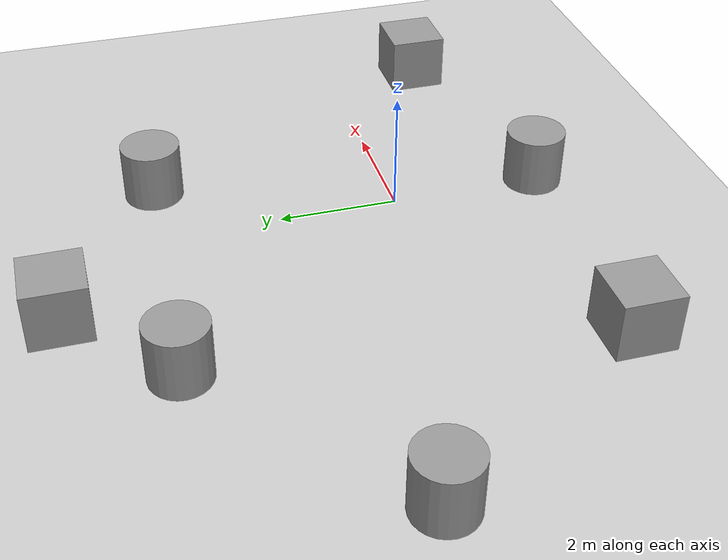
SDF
<sdf version="1.7">
 <world name="default">
  <light name="sun" type="directional">
   <pose>0 0 10 0 -0 0</pose>
   <diffuse>0.8 0.8 0.8 1</diffuse>
   <specular>0.2 0.2 0.2 1</specular>
   <attenuation>
    <range>1000</range>
    <constant>0.9</constant>
    <linear>0.01</linear>
    <quadratic>0.001</quadratic>
   </attenuation>
   <direction>-0.5 0.1 -0.9</direction>
   <spot><inner_angle>0</inner_angle><outer_angle>0</outer_angle><falloff>0</falloff></spot>
  </light>
  <model name="ground_plane">
   <static>1</static>
   <link name="link">
    <collision name="collision">
     <geometry><plane><normal>0 0 1</normal><size>100 100</size></plane></geometry>
     <surface>
      <contact><collide_bitmask>65535</collide_bitmask></contact>
      <friction><ode><mu>100</mu><mu2>50</mu2></ode></friction>
     </surface>
    </collision>
    <visual name="visual">
     <cast_shadows>0</cast_shadows>
     <geometry><plane><normal>0 0 1</normal><size>100 100</size></plane></geometry>
     <material>
      <script><uri>file://media/materials/scripts/gazebo.material</uri><name>Gazebo/Grey</name></script>
     </material>
    </visual>
   </link>
  </model>
  <gravity>0 0 -9.8</gravity>
  <magnetic_field>6e-06 2.3e-05 -4.2e-05</magnetic_field>
  <atmosphere type="adiabatic"/>
  <physics type="ode">
   <max_step_size>0.001</max_step_size>
   <real_time_factor>1</real_time_factor>
   <real_time_update_rate>1000</real_time_update_rate>
  </physics>
  <scene><ambient>0.4 0.4 0.4 1</ambient><background>0.7 0.7 0.7 1</background><shadows>1</shadows></scene>
  <audio><device>default</device></audio>
  <spherical_coordinates>
   <surface_model>EARTH_WGS84</surface_model>
   <latitude_deg>0</latitude_deg>
   <longitude_deg>0</longitude_deg>
   <elevation>0</elevation>
   <heading_deg>0</heading_deg>
  </spherical_coordinates>
  <model name="unit_cylinder">
   <pose>-6.58055 1.38327 0.499992 -3e-06 3e-06 0</pose>
   <link name="link">
    <inertial>
     <mass>1</mass>
     <inertia><ixx>0.145833</ixx><ixy>0</ixy><ixz>0</ixz><iyy>0.145833</iyy><iyz>0</iyz><izz>0.125</izz></inertia>
    </inertial>
    <collision name="collision">
     <geometry><cylinder><radius>0.5</radius><length>1</length></cylinder></geometry>
    </collision>
    <visual name="visual">
     <geometry><cylinder><radius>0.5</radius><length>1</length></cylinder></geometry>
     <material>
      <script><name>Gazebo/Grey</name><uri>file://media/materials/scripts/gazebo.material</uri></script>
     </material>
    </visual>
   </link>
  </model>
  <model name="unit_cylinder_0">
   <pose>0.035786 -2.53637 0.499998 4e-06 -4e-06 0</pose>
   <link name="link">
    <inertial>
     <mass>1</mass>
     <inertia><ixx>0.145833</ixx><ixy>0</ixy><ixz>0</ixz><iyy>0.145833</iyy><iyz>0</iyz><izz>0.125</izz></inertia>
    </inertial>
    <collision name="collision">
     <geometry><cylinder><radius>0.5</radius><length>1</length></cylinder></geometry>
    </collision>
    <visual name="visual">
     <geometry><cylinder><radius>0.5</radius><length>1</length></cylinder></geometry>
     <material>
      <script><name>Gazebo/Grey</name><uri>file://media/materials/scripts/gazebo.material</uri></script>
     </material>
    </visual>
   </link>
  </model>
  <model name="unit_cylinder_1">
   <pose>-3.32447 4.21249 0.499992 -3e-06 4e-06 0</pose>
   <link name="link">
    <inertial>
     <mass>1</mass>
     <inertia><ixx>0.145833</ixx><ixy>0</ixy><ixz>0</ixz><iyy>0.145833</iyy><iyz>0</iyz><izz>0.125</izz></inertia>
    </inertial>
    <collision name="collision">
     <geometry><cylinder><radius>0.5</radius><length>1</length></cylinder></geometry>
    </collision>
    <visual name="visual">
     <geometry><cylinder><radius>0.5</radius><length>1</length></cylinder></geometry>
     <material>
      <script><name>Gazebo/Grey</name><uri>file://media/materials/scripts/gazebo.material</uri></script>
     </material>
    </visual>
   </link>
  </model>
  <model name="unit_cylinder_2">
   <pose>1.32821 3.94234 0.499998 4e-06 -4e-06 0</pose>
   <link name="link">
    <inertial>
     <mass>1</mass>
     <inertia><ixx>0.145833</ixx><ixy>0</ixy><ixz>0</ixz><iyy>0.145833</iyy><iyz>0</iyz><izz>0.125</izz></inertia>
    </inertial>
    <collision name="collision">
     <geometry><cylinder><radius>0.5</radius><length>1</length></cylinder></geometry>
    </collision>
    <visual name="visual">
     <geometry><cylinder><radius>0.5</radius><length>1</length></cylinder></geometry>
     <material>
      <script><name>Gazebo/Grey</name><uri>file://media/materials/scripts/gazebo.material</uri></script>
     </material>
    </visual>
   </link>
  </model>
  <model name="unit_box">
   <pose>-4.18666 -2.39118 0.499995 0 1e-05 0</pose>
   <link name="link">
    <inertial>
     <mass>1</mass>
     <inertia>
      <ixx>0.166667</ixx>
      <ixy>0</ixy>
      <ixz>0</ixz>
      <iyy>0.166667</iyy>
      <iyz>0</iyz>
      <izz>0.166667</izz>
     </inertia>
    </inertial>
    <collision name="collision"><geometry><box><size>1 1 1</size></box></geometry></collision>
    <visual name="visual">
     <geometry><box><size>1 1 1</size></box></geometry>
     <material>
      <script><name>Gazebo/Grey</name><uri>file://media/materials/scripts/gazebo.material</uri></script>
     </material>
    </visual>
   </link>
  </model>
  <model name="unit_box_0">
   <pose>-1.74348 5.79347 0.499995 -1e-05 -0 0</pose>
   <link name="link">
    <inertial>
     <mass>1</mass>
     <inertia>
      <ixx>0.166667</ixx>
      <ixy>0</ixy>
      <ixz>0</ixz>
      <iyy>0.166667</iyy>
      <iyz>0</iyz>
      <izz>0.166667</izz>
     </inertia>
    </inertial>
    <collision name="collision"><geometry><box><size>1 1 1</size></box></geometry></collision>
    <visual name="visual">
     <geometry><box><size>1 1 1</size></box></geometry>
     <material>
      <script><name>Gazebo/Grey</name><uri>file://media/materials/scripts/gazebo.material</uri></script>
     </material>
    </visual>
   </link>
  </model>
  <model name="unit_box_1">
   <pose>4.15691 -1.60888 0.5 0 -0 0</pose>
   <link name="link">
    <inertial>
     <mass>1</mass>
     <inertia>
      <ixx>0.166667</ixx>
      <ixy>0</ixy>
      <ixz>0</ixz>
      <iyy>0.166667</iyy>
      <iyz>0</iyz>
      <izz>0.166667</izz>
     </inertia>
    </inertial>
    <collision name="collision"><geometry><box><size>1 1 1</size></box></geometry></collision>
    <visual name="visual">
     <geometry><box><size>1 1 1</size></box></geometry>
     <material>
      <script><name>Gazebo/Grey</name><uri>file://media/materials/scripts/gazebo.material</uri></script>
     </material>
    </visual>
   </link>
  </model>
 </world>
</sdf>
